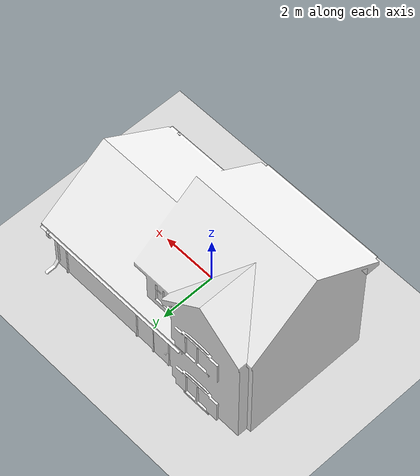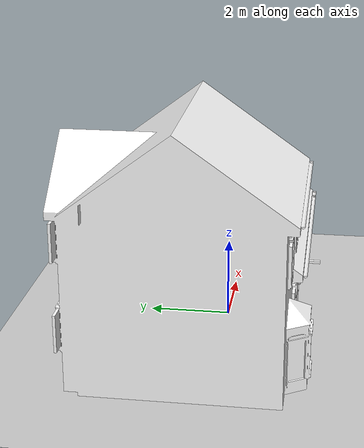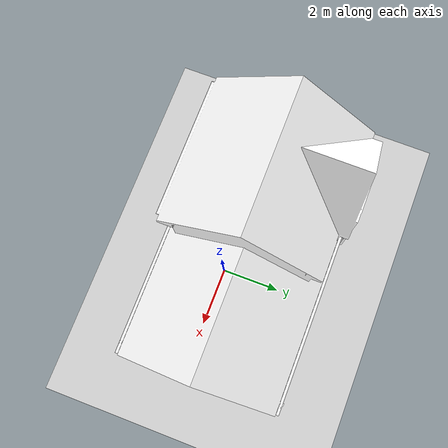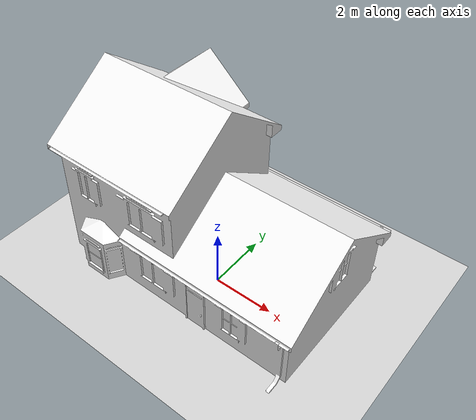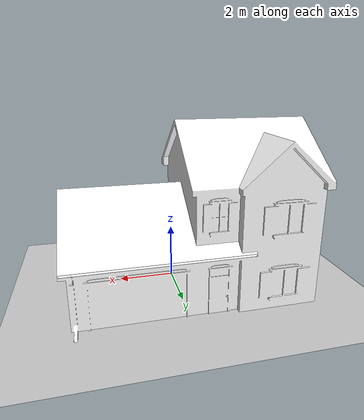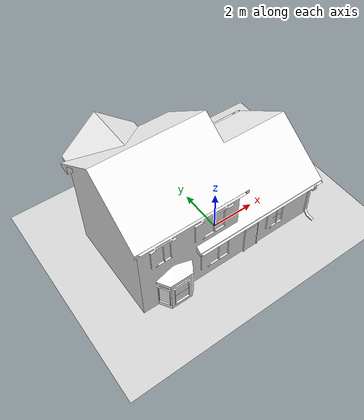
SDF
<sdf version='1.6'>
  <world name='default'>
    <model name='ground_plane'>
      <static>1</static>
      <link name='link'>
        <collision name='collision'>
          <geometry>
            <plane>
              <normal>0 0 1</normal>
              <size>100 100</size>
            </plane>
          </geometry>
          <surface>
            <friction>
              <ode>
                <mu>100</mu>
                <mu2>50</mu2>
              </ode>
              <torsional>
                <ode/>
              </torsional>
            </friction>
            <contact>
              <ode/>
            </contact>
            <bounce/>
          </surface>
          <max_contacts>10</max_contacts>
        </collision>
        <visual name='visual'>
          <cast_shadows>0</cast_shadows>
          <geometry>
            <plane>
              <normal>0 0 1</normal>
              <size>100 100</size>
            </plane>
          </geometry>
          <material>
            <script>
              <uri>file://media/materials/scripts/gazebo.material</uri>
              <name>Gazebo/Grey</name>
            </script>
          </material>
        </visual>
        <self_collide>0</self_collide>
        <kinematic>0</kinematic>
        <gravity>1</gravity>
      </link>
    </model>
    <light name='sun' type='directional'>
      <cast_shadows>1</cast_shadows>
      <pose frame=''>0 0 10 0 -0 0</pose>
      <diffuse>0.8 0.8 0.8 1</diffuse>
      <specular>0.1 0.1 0.1 1</specular>
      <attenuation>
        <range>1000</range>
        <constant>0.9</constant>
        <linear>0.01</linear>
        <quadratic>0.001</quadratic>
      </attenuation>
      <direction>-0.5 0.5 -1</direction>
    </light>
    <gui fullscreen='0'>
      <camera name='user_camera'>
        <pose frame=''>6.09661 0.078682 5.56328 0 0.573796 3.02822</pose>
        <view_controller>orbit</view_controller>
        <projection_type>perspective</projection_type>
      </camera>
    </gui>
    <gravity>0 0 -9.8</gravity>
    <magnetic_field>6e-06 2.3e-05 -4.2e-05</magnetic_field>
    <atmosphere type='adiabatic'/>
    <physics name='default_physics' default='0' type='ode'>
      <max_step_size>0.001</max_step_size>
      <real_time_factor>1</real_time_factor>
      <real_time_update_rate>1000</real_time_update_rate>
    </physics>
    <scene>
      <ambient>0.4 0.4 0.4 1</ambient>
      <background>0.7 0.7 0.7 1</background>
      <shadows>1</shadows>
    </scene>
    <spherical_coordinates>
      <surface_model>EARTH_WGS84</surface_model>
      <latitude_deg>0</latitude_deg>
      <longitude_deg>0</longitude_deg>
      <elevation>0</elevation>
      <heading_deg>0</heading_deg>
    </spherical_coordinates>

    <model name='Ev1_0'>
      <link name='link'>
        <pose frame=''>0 0 0 0 -0 0</pose>
        <inertial>
          <mass>1</mass>
          <pose frame=''>0 0 0 0 -0 0</pose>
          <inertia>
            <ixx>1</ixx>
            <ixy>0</ixy>
            <ixz>0</ixz>
            <iyy>1</iyy>
            <iyz>0</iyz>
            <izz>1</izz>
          </inertia>
        </inertial>
        <self_collide>0</self_collide>
        <kinematic>0</kinematic>
        <gravity>1</gravity>
        <visual name='visual'>
          <geometry>
            <mesh>
              <uri>model://house_3/meshes/house_3.dae</uri>
              <scale>1 1 1 1</scale>
            </mesh>
          </geometry>
          <material>
            <script>
              <uri>model://house_3/materials/scripts</uri>
              <uri>model://house_3/materials/textures</uri>
              <name>House_3/Diffuse</name>
            </script>
            <ambient>1 1 1 1</ambient>
            <diffuse>1 1 1 1</diffuse>
            <specular>0 0 0 1</specular>
            <emissive>0 0 0 1</emissive>
            <shader type='vertex'>
              <normal_map>__default__</normal_map>
            </shader>
          </material>
          <pose frame=''>0 0 0 0 -0 0</pose>
          <cast_shadows>1</cast_shadows>
          <transparency>0</transparency>
        </visual>
        <collision name='collision'>
          <laser_retro>0</laser_retro>
          <max_contacts>10</max_contacts>
          <pose frame=''>0 0 0 0 -0 0</pose>
          <geometry>
            <mesh>
              <uri>/home/gurbuz/.gazebo/models/house_3/meshes/house_3.dae</uri>
              <scale>1 1 1</scale>
            </mesh>
          </geometry>
          <surface>
            <friction>
              <ode>
                <mu>1</mu>
                <mu2>1</mu2>
                <fdir1>0 0 0</fdir1>
                <slip1>0</slip1>
                <slip2>0</slip2>
              </ode>
              <torsional>
                <coefficient>1</coefficient>
                <patch_radius>0</patch_radius>
                <surface_radius>0</surface_radius>
                <use_patch_radius>1</use_patch_radius>
                <ode>
                  <slip>0</slip>
                </ode>
              </torsional>
            </friction>
            <bounce>
              <restitution_coefficient>0</restitution_coefficient>
              <threshold>1e+06</threshold>
            </bounce>
            <contact>
              <collide_without_contact>0</collide_without_contact>
              <collide_without_contact_bitmask>1</collide_without_contact_bitmask>
              <collide_bitmask>1</collide_bitmask>
              <ode>
                <soft_cfm>0</soft_cfm>
                <soft_erp>0.2</soft_erp>
                <kp>1e+13</kp>
                <kd>1</kd>
                <max_vel>0.01</max_vel>
                <min_depth>0</min_depth>
              </ode>
              <bullet>
                <split_impulse>1</split_impulse>
                <split_impulse_penetration_threshold>-0.01</split_impulse_penetration_threshold>
                <soft_cfm>0</soft_cfm>
                <soft_erp>0.2</soft_erp>
                <kp>1e+13</kp>
                <kd>1</kd>
              </bullet>
            </contact>
          </surface>
        </collision>
      </link>
      <static>1</static>
      <allow_auto_disable>1</allow_auto_disable>
      <pose frame=''>-0.10025 0.658565 0 0 -0 0</pose>
    </model>

  </world>
</sdf>
